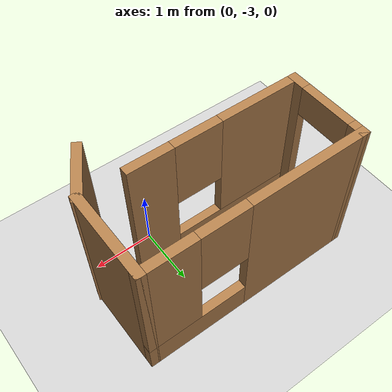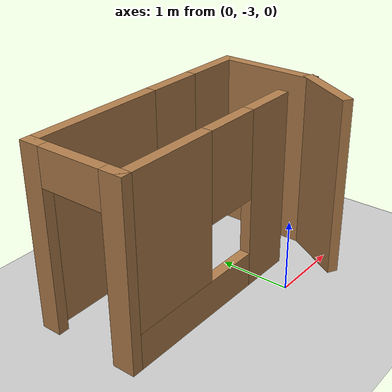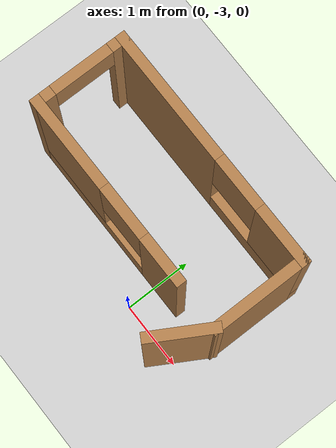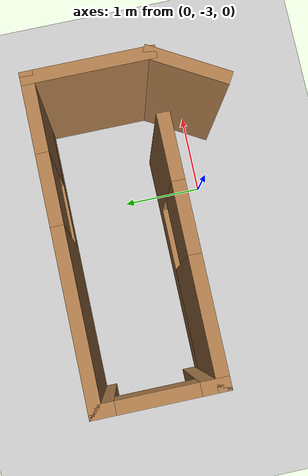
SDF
<sdf version="1.7">
 <world name="default">
  <light name="sun" type="directional">
   <pose>0 0 10 0 -0 0</pose>
   <diffuse>0.8 0.8 0.8 1</diffuse>
   <specular>0.2 0.2 0.2 1</specular>
   <attenuation>
    <range>1000</range>
    <constant>0.9</constant>
    <linear>0.01</linear>
    <quadratic>0.001</quadratic>
   </attenuation>
   <direction>-0.5 0.1 -0.9</direction>
   <spot><inner_angle>0</inner_angle><outer_angle>0</outer_angle><falloff>0</falloff></spot>
  </light>
  <model name="ground_plane">
   <static>1</static>
   <link name="link">
    <collision name="collision">
     <geometry><plane><normal>0 0 1</normal><size>100 100</size></plane></geometry>
     <surface>
      <contact><collide_bitmask>65535</collide_bitmask></contact>
      <friction><ode><mu>100</mu><mu2>50</mu2></ode></friction>
     </surface>
    </collision>
    <visual name="visual">
     <cast_shadows>0</cast_shadows>
     <geometry><plane><normal>0 0 1</normal><size>100 100</size></plane></geometry>
     <material>
      <script><uri>file://media/materials/scripts/gazebo.material</uri><name>Gazebo/Grey</name></script>
     </material>
    </visual>
   </link>
  </model>
  <gravity>0 0 -9.8</gravity>
  <magnetic_field>6e-06 2.3e-05 -4.2e-05</magnetic_field>
  <atmosphere type="adiabatic"/>
  <physics type="ode">
   <max_step_size>0.001</max_step_size>
   <real_time_factor>1</real_time_factor>
   <real_time_update_rate>1000</real_time_update_rate>
  </physics>
  <scene><ambient>0.4 0.4 0.4 1</ambient><background>0.7 0.7 0.7 1</background><shadows>1</shadows></scene>
  <spherical_coordinates>
   <surface_model>EARTH_WGS84</surface_model>
   <latitude_deg>0</latitude_deg>
   <longitude_deg>0</longitude_deg>
   <elevation>0</elevation>
   <heading_deg>0</heading_deg>
  </spherical_coordinates>
  <model name="room">
   <pose>-0.606274 -1.66929 0 0 -0 0</pose>
   <link name="Wall_0">
    <pose>-0.388726 -0.830713 0 0 -0 3.14159</pose>
    <visual name="Wall_0_Visual_0">
     <pose>-1.1225 0 1.25 0 -0 0</pose>
     <geometry><box><size>0.755 0.15 2.5</size></box></geometry>
     <material>
      <script><uri>file://media/materials/scripts/gazebo.material</uri><name>Gazebo/Wood</name></script>
      <ambient>1 1 1 1</ambient>
     </material>
     <meta><layer>0</layer></meta>
    </visual>
    <collision name="Wall_0_Collision_0">
     <geometry><box><size>0.755 0.15 2.5</size></box></geometry>
     <pose>-1.1225 0 1.25 0 -0 0</pose>
    </collision>
    <visual name="Wall_0_Visual_1">
     <pose>0.3775 0 0.25 0 -0 0</pose>
     <geometry><box><size>2.245 0.15 0.5</size></box></geometry>
     <material>
      <script><uri>file://media/materials/scripts/gazebo.material</uri><name>Gazebo/Wood</name></script>
      <ambient>1 1 1 1</ambient>
     </material>
     <meta><layer>0</layer></meta>
    </visual>
    <collision name="Wall_0_Collision_1">
     <geometry><box><size>2.245 0.15 0.5</size></box></geometry>
     <pose>0.3775 0 0.25 0 -0 0</pose>
    </collision>
    <visual name="Wall_0_Visual_2">
     <pose>0.7775 0 1.5 0 -0 0</pose>
     <geometry><box><size>1.445 0.15 2</size></box></geometry>
     <material>
      <script><uri>file://media/materials/scripts/gazebo.material</uri><name>Gazebo/Wood</name></script>
      <ambient>1 1 1 1</ambient>
     </material>
     <meta><layer>0</layer></meta>
    </visual>
    <collision name="Wall_0_Collision_2">
     <geometry><box><size>1.445 0.15 2</size></box></geometry>
     <pose>0.7775 0 1.5 0 -0 0</pose>
    </collision>
    <visual name="Wall_0_Visual_3">
     <pose>-0.345 0 1.9 0 -0 0</pose>
     <geometry><box><size>0.8 0.15 1.2</size></box></geometry>
     <material>
      <script><uri>file://media/materials/scripts/gazebo.material</uri><name>Gazebo/Wood</name></script>
      <ambient>1 1 1 1</ambient>
     </material>
     <meta><layer>0</layer></meta>
    </visual>
    <collision name="Wall_0_Collision_3">
     <geometry><box><size>0.8 0.15 1.2</size></box></geometry>
     <pose>-0.345 0 1.9 0 -0 0</pose>
    </collision>
   </link>
   <link name="Wall_1">
    <pose>-1.81373 -0.155713 0 0 -0 1.5708</pose>
    <visual name="Wall_1_Visual_0">
     <pose>-0.5925 0 1.25 0 -0 0</pose>
     <geometry><box><size>0.315 0.15 2.5</size></box></geometry>
     <material>
      <script><uri>file://media/materials/scripts/gazebo.material</uri><name>Gazebo/Wood</name></script>
      <ambient>1 1 1 1</ambient>
     </material>
     <meta><layer>0</layer></meta>
    </visual>
    <collision name="Wall_1_Collision_0">
     <geometry><box><size>0.315 0.15 2.5</size></box></geometry>
     <pose>-0.5925 0 1.25 0 -0 0</pose>
    </collision>
    <visual name="Wall_1_Visual_1">
     <pose>0.6075 0 1.25 0 -0 0</pose>
     <geometry><box><size>0.285 0.15 2.5</size></box></geometry>
     <material>
      <script><uri>file://media/materials/scripts/gazebo.material</uri><name>Gazebo/Wood</name></script>
      <ambient>1 1 1 1</ambient>
     </material>
     <meta><layer>0</layer></meta>
    </visual>
    <collision name="Wall_1_Collision_1">
     <geometry><box><size>0.285 0.15 2.5</size></box></geometry>
     <pose>0.6075 0 1.25 0 -0 0</pose>
    </collision>
    <visual name="Wall_1_Visual_2">
     <pose>0.015 0 2.25 0 -0 0</pose>
     <geometry><box><size>0.9 0.15 0.5</size></box></geometry>
     <material>
      <script><uri>file://media/materials/scripts/gazebo.material</uri><name>Gazebo/Wood</name></script>
      <ambient>1 1 1 1</ambient>
     </material>
     <meta><layer>0</layer></meta>
    </visual>
    <collision name="Wall_1_Collision_2">
     <geometry><box><size>0.9 0.15 0.5</size></box></geometry>
     <pose>0.015 0 2.25 0 -0 0</pose>
    </collision>
   </link>
   <link name="Wall_2">
    <pose>-0.013726 0.519287 0 0 -0 0</pose>
    <visual name="Wall_2_Visual_0">
     <pose>-0.8575 0 1.25 0 -0 0</pose>
     <geometry><box><size>2.035 0.15 2.5</size></box></geometry>
     <material>
      <script><uri>file://media/materials/scripts/gazebo.material</uri><name>Gazebo/Wood</name></script>
      <ambient>1 1 1 1</ambient>
     </material>
     <meta><layer>0</layer></meta>
    </visual>
    <collision name="Wall_2_Collision_0">
     <geometry><box><size>2.035 0.15 2.5</size></box></geometry>
     <pose>-0.8575 0 1.25 0 -0 0</pose>
    </collision>
    <visual name="Wall_2_Visual_1">
     <pose>1.0175 0 0.25 0 -0 0</pose>
     <geometry><box><size>1.715 0.15 0.5</size></box></geometry>
     <material>
      <script><uri>file://media/materials/scripts/gazebo.material</uri><name>Gazebo/Wood</name></script>
      <ambient>1 1 1 1</ambient>
     </material>
     <meta><layer>0</layer></meta>
    </visual>
    <collision name="Wall_2_Collision_1">
     <geometry><box><size>1.715 0.15 0.5</size></box></geometry>
     <pose>1.0175 0 0.25 0 -0 0</pose>
    </collision>
    <visual name="Wall_2_Visual_2">
     <pose>1.4175 0 1.5 0 -0 0</pose>
     <geometry><box><size>0.915 0.15 2</size></box></geometry>
     <material>
      <script><uri>file://media/materials/scripts/gazebo.material</uri><name>Gazebo/Wood</name></script>
      <ambient>1 1 1 1</ambient>
     </material>
     <meta><layer>0</layer></meta>
    </visual>
    <collision name="Wall_2_Collision_2">
     <geometry><box><size>0.915 0.15 2</size></box></geometry>
     <pose>1.4175 0 1.5 0 -0 0</pose>
    </collision>
    <visual name="Wall_2_Visual_3">
     <pose>0.56 0 1.9 0 -0 0</pose>
     <geometry><box><size>0.8 0.15 1.2</size></box></geometry>
     <material>
      <script><uri>file://media/materials/scripts/gazebo.material</uri><name>Gazebo/Wood</name></script>
      <ambient>1 1 1 1</ambient>
     </material>
     <meta><layer>0</layer></meta>
    </visual>
    <collision name="Wall_2_Collision_3">
     <geometry><box><size>0.8 0.15 1.2</size></box></geometry>
     <pose>0.56 0 1.9 0 -0 0</pose>
    </collision>
   </link>
   <link name="Wall_3">
    <collision name="Wall_3_Collision">
     <geometry><box><size>1.5 0.15 2.5</size></box></geometry>
     <pose>0 0 1.25 0 -0 0</pose>
    </collision>
    <visual name="Wall_3_Visual">
     <pose>0 0 1.25 0 -0 0</pose>
     <geometry><box><size>1.5 0.15 2.5</size></box></geometry>
     <material>
      <script><uri>file://media/materials/scripts/gazebo.material</uri><name>Gazebo/Wood</name></script>
      <ambient>1 1 1 1</ambient>
     </material>
     <meta><layer>0</layer></meta>
    </visual>
    <pose>1.78627 -0.155713 0 0 -0 -1.5708</pose>
   </link>
   <link name="Wall_4">
    <collision name="Wall_4_Collision">
     <geometry><box><size>1 0.15 2.5</size></box></geometry>
     <pose>0 0 1.25 0 -0 0</pose>
    </collision>
    <visual name="Wall_4_Visual">
     <pose>0 0 1.25 0 -0 0</pose>
     <geometry><box><size>1 0.15 2.5</size></box></geometry>
     <material>
      <script><uri>file://media/materials/scripts/gazebo.material</uri><name>Gazebo/Wood</name></script>
      <ambient>1 1 1 1</ambient>
     </material>
     <meta><layer>0</layer></meta>
    </visual>
    <pose>1.57377 -1.19877 0 0 -0 -2.0944</pose>
   </link>
   <static>1</static>
  </model>
 </world>
</sdf>
